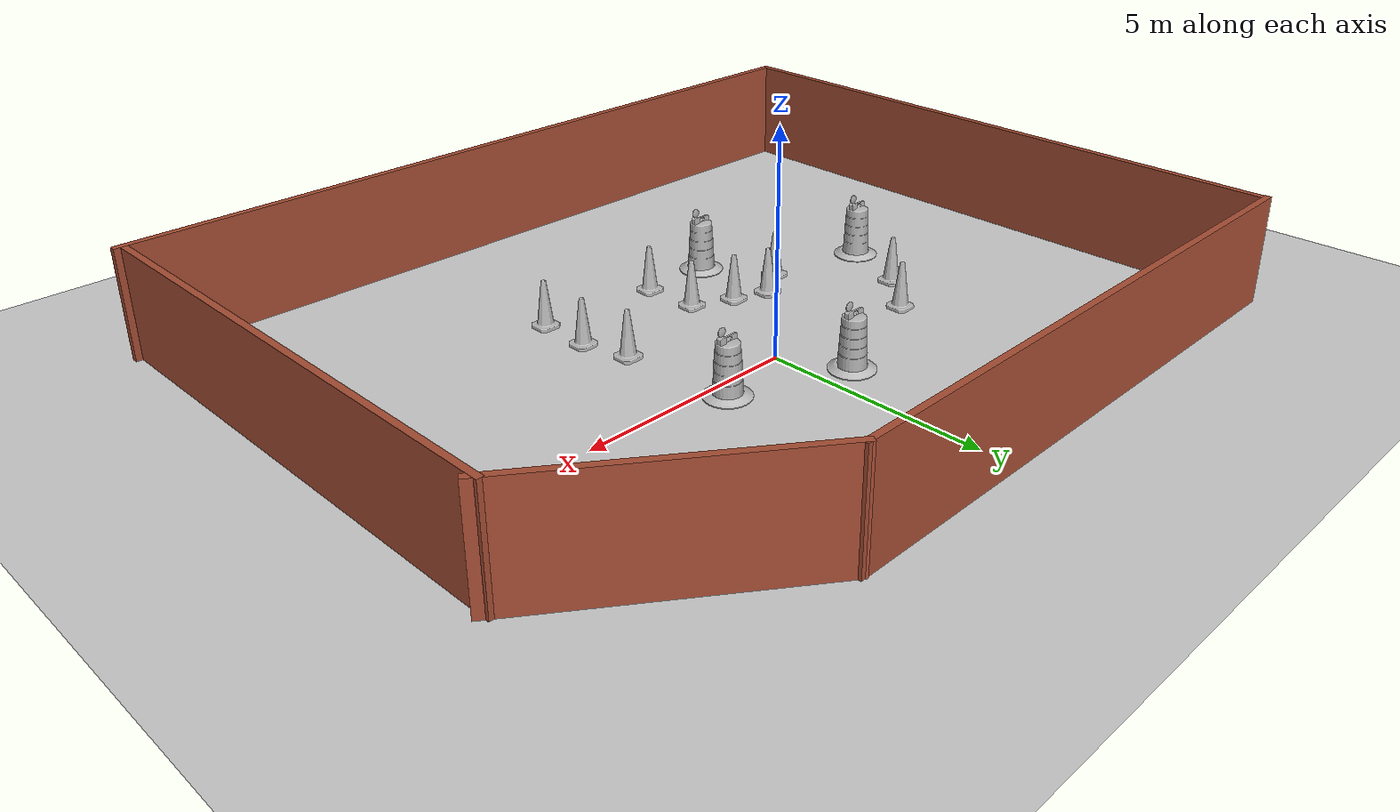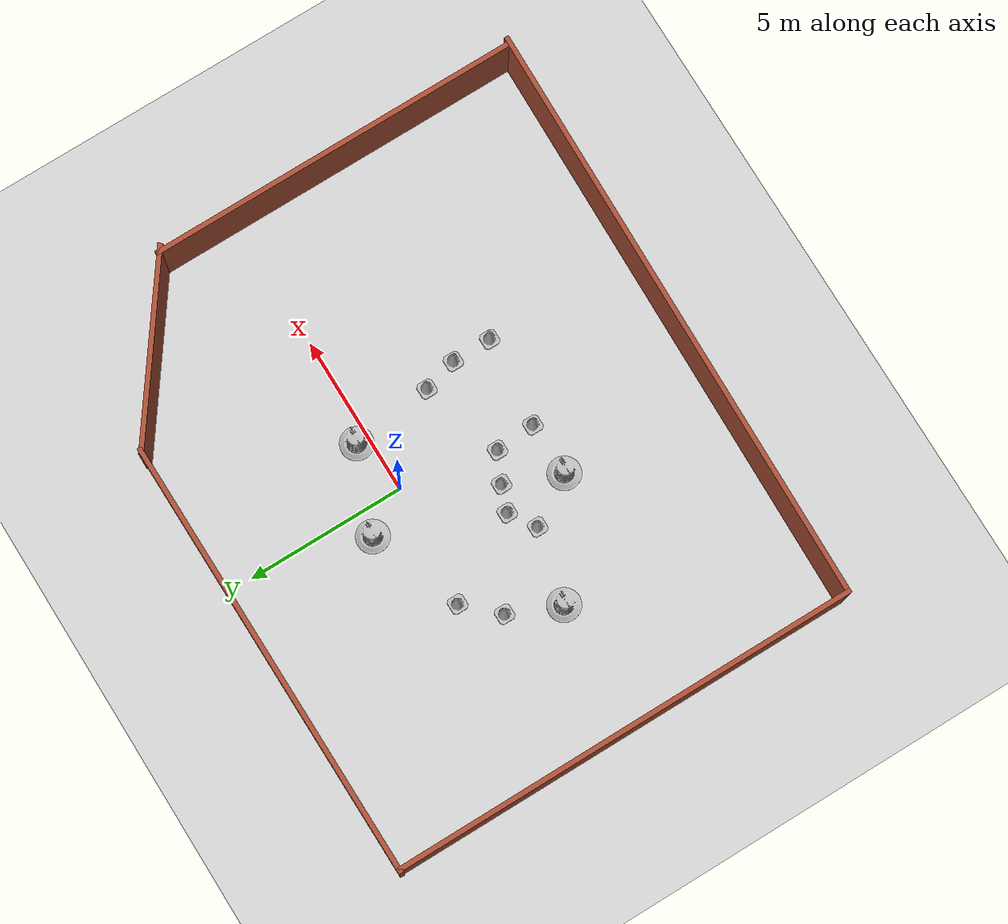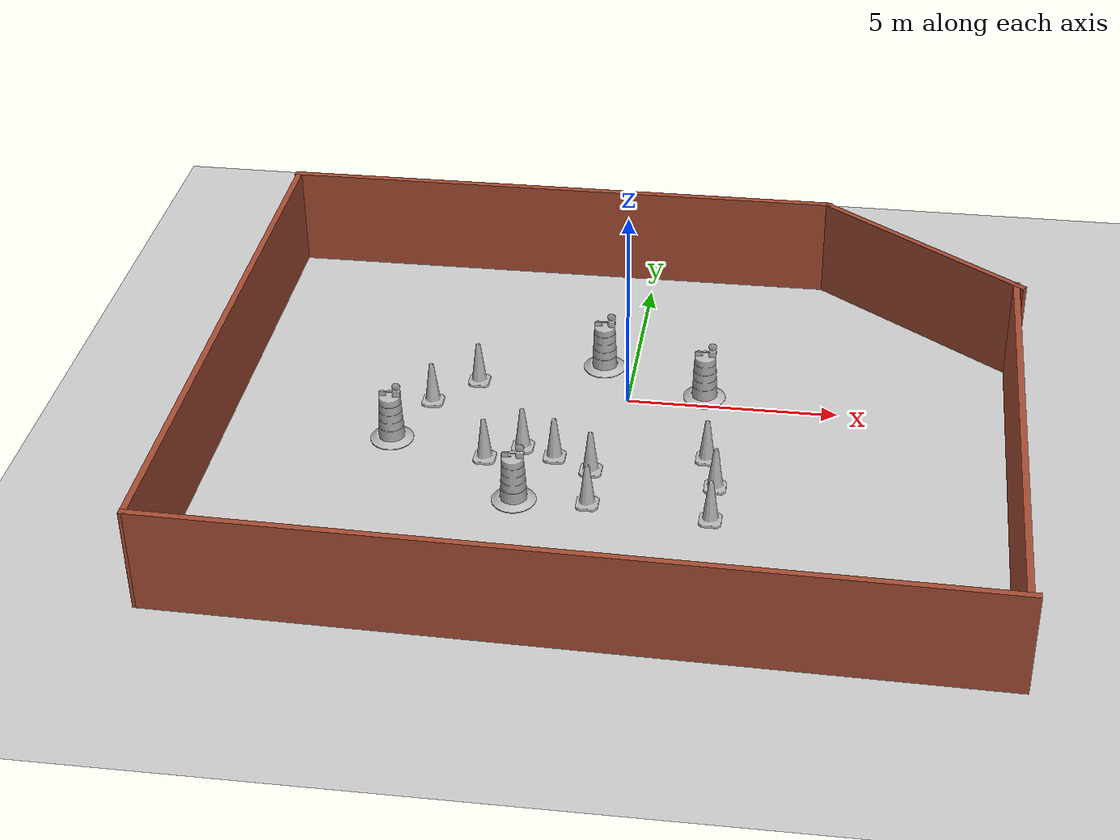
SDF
<sdf version="1.7">
 <world name="default">
  <light name="sun" type="directional">
   <pose>0 0 10 0 -0 0</pose>
   <diffuse>0.8 0.8 0.8 1</diffuse>
   <specular>0.2 0.2 0.2 1</specular>
   <attenuation>
    <range>1000</range>
    <constant>0.9</constant>
    <linear>0.01</linear>
    <quadratic>0.001</quadratic>
   </attenuation>
   <direction>-0.5 0.1 -0.9</direction>
   <spot><inner_angle>0</inner_angle><outer_angle>0</outer_angle><falloff>0</falloff></spot>
  </light>
  <model name="ground_plane">
   <static>1</static>
   <link name="link">
    <collision name="collision">
     <geometry><plane><normal>0 0 1</normal><size>100 100</size></plane></geometry>
     <surface>
      <contact><collide_bitmask>65535</collide_bitmask></contact>
      <friction><ode><mu>100</mu><mu2>50</mu2></ode></friction>
     </surface>
    </collision>
    <visual name="visual">
     <cast_shadows>0</cast_shadows>
     <geometry><plane><normal>0 0 1</normal><size>100 100</size></plane></geometry>
     <material>
      <script><uri>file://media/materials/scripts/gazebo.material</uri><name>Gazebo/Grey</name></script>
     </material>
    </visual>
   </link>
  </model>
  <gravity>0 0 -9.8</gravity>
  <magnetic_field>6e-06 2.3e-05 -4.2e-05</magnetic_field>
  <atmosphere type="adiabatic"/>
  <physics type="ode">
   <max_step_size>0.001</max_step_size>
   <real_time_factor>1</real_time_factor>
   <real_time_update_rate>1000</real_time_update_rate>
  </physics>
  <scene><ambient>0.4 0.4 0.4 1</ambient><background>0.7 0.7 0.7 1</background><shadows>1</shadows></scene>
  <spherical_coordinates>
   <surface_model>EARTH_WGS84</surface_model>
   <latitude_deg>0</latitude_deg>
   <longitude_deg>0</longitude_deg>
   <elevation>0</elevation>
   <heading_deg>0</heading_deg>
  </spherical_coordinates>
  <model name="Construction Barrel">
   <link name="link">
    <inertial>
     <pose>0 0 0.4 0 -0 0</pose>
     <mass>500</mass>
     <inertia><ixx>51.2096</ixx><iyy>51.2096</iyy><izz>25</izz><ixy>0</ixy><ixz>0</ixz><iyz>0</iyz></inertia>
    </inertial>
    <collision name="collision">
     <geometry><mesh><uri>model://construction_barrel/meshes/construction_barrel.dae</uri></mesh></geometry>
    </collision>
    <visual name="visual">
     <geometry><mesh><uri>model://construction_barrel/meshes/construction_barrel.dae</uri></mesh></geometry>
    </visual>
   </link>
   <pose>-0.756323 1.39223 -1e-06 0 5e-06 -2.6e-05</pose>
  </model>
  <model name="Construction Barrel_0">
   <link name="link">
    <inertial>
     <pose>0 0 0.4 0 -0 0</pose>
     <mass>500</mass>
     <inertia><ixx>51.2096</ixx><iyy>51.2096</iyy><izz>25</izz><ixy>0</ixy><ixz>0</ixz><iyz>0</iyz></inertia>
    </inertial>
    <collision name="collision">
     <geometry><mesh><uri>model://construction_barrel/meshes/construction_barrel.dae</uri></mesh></geometry>
    </collision>
    <visual name="visual">
     <geometry><mesh><uri>model://construction_barrel/meshes/construction_barrel.dae</uri></mesh></geometry>
    </visual>
   </link>
   <pose>1.80013 0.377144 0 0 0 -2.6e-05</pose>
  </model>
  <model name="Construction Cone">
   <link name="link">
    <collision name="collision">
     <geometry>
      <mesh><scale>10 10 10</scale><uri>model://construction_cone/meshes/construction_cone.dae</uri></mesh>
     </geometry>
    </collision>
    <visual name="visual">
     <geometry>
      <mesh><scale>10 10 10</scale><uri>model://construction_cone/meshes/construction_cone.dae</uri></mesh>
     </geometry>
    </visual>
    <inertial>
     <inertia><ixx>1</ixx><ixy>0</ixy><ixz>0</ixz><iyy>1</iyy><iyz>0</iyz><izz>1</izz></inertia>
     <mass>1</mass>
    </inertial>
   </link>
   <pose>-2.19745 -2.25046 -0 0 -0 0</pose>
  </model>
  <model name="Construction Cone_0">
   <link name="link">
    <collision name="collision">
     <geometry>
      <mesh><scale>10 10 10</scale><uri>model://construction_cone/meshes/construction_cone.dae</uri></mesh>
     </geometry>
    </collision>
    <visual name="visual">
     <geometry>
      <mesh><scale>10 10 10</scale><uri>model://construction_cone/meshes/construction_cone.dae</uri></mesh>
     </geometry>
    </visual>
    <inertial>
     <inertia><ixx>1</ixx><ixy>0</ixy><ixz>0</ixz><iyy>1</iyy><iyz>0</iyz><izz>1</izz></inertia>
     <mass>1</mass>
    </inertial>
   </link>
   <pose>-1.40494 -2.55135 -0 0 -0 0</pose>
  </model>
  <model name="Construction Cone_1">
   <link name="link">
    <collision name="collision">
     <geometry>
      <mesh><scale>10 10 10</scale><uri>model://construction_cone/meshes/construction_cone.dae</uri></mesh>
     </geometry>
    </collision>
    <visual name="visual">
     <geometry>
      <mesh><scale>10 10 10</scale><uri>model://construction_cone/meshes/construction_cone.dae</uri></mesh>
     </geometry>
    </visual>
    <inertial>
     <inertia><ixx>1</ixx><ixy>0</ixy><ixz>0</ixz><iyy>1</iyy><iyz>0</iyz><izz>1</izz></inertia>
     <mass>1</mass>
    </inertial>
   </link>
   <pose>-0.501986 -2.9745 -0 0 -0 0</pose>
  </model>
  <model name="Construction Cone_2">
   <link name="link">
    <collision name="collision">
     <geometry>
      <mesh><scale>10 10 10</scale><uri>model://construction_cone/meshes/construction_cone.dae</uri></mesh>
     </geometry>
    </collision>
    <visual name="visual">
     <geometry>
      <mesh><scale>10 10 10</scale><uri>model://construction_cone/meshes/construction_cone.dae</uri></mesh>
     </geometry>
    </visual>
    <inertial>
     <inertia><ixx>1</ixx><ixy>0</ixy><ixz>0</ixz><iyy>1</iyy><iyz>0</iyz><izz>1</izz></inertia>
     <mass>1</mass>
    </inertial>
   </link>
   <pose>2.09724 -2.18232 -0 0 -0 0</pose>
  </model>
  <model name="Construction Cone_3">
   <link name="link">
    <collision name="collision">
     <geometry>
      <mesh><scale>10 10 10</scale><uri>model://construction_cone/meshes/construction_cone.dae</uri></mesh>
     </geometry>
    </collision>
    <visual name="visual">
     <geometry>
      <mesh><scale>10 10 10</scale><uri>model://construction_cone/meshes/construction_cone.dae</uri></mesh>
     </geometry>
    </visual>
    <inertial>
     <inertia><ixx>1</ixx><ixy>0</ixy><ixz>0</ixz><iyy>1</iyy><iyz>0</iyz><izz>1</izz></inertia>
     <mass>1</mass>
    </inertial>
   </link>
   <pose>-3.69879 0.345038 -0 0 -0 0</pose>
  </model>
  <model name="Construction Cone_4">
   <link name="link">
    <collision name="collision">
     <geometry>
      <mesh><scale>10 10 10</scale><uri>model://construction_cone/meshes/construction_cone.dae</uri></mesh>
     </geometry>
    </collision>
    <visual name="visual">
     <geometry>
      <mesh><scale>10 10 10</scale><uri>model://construction_cone/meshes/construction_cone.dae</uri></mesh>
     </geometry>
    </visual>
    <inertial>
     <inertia><ixx>1</ixx><ixy>0</ixy><ixz>0</ixz><iyy>1</iyy><iyz>0</iyz><izz>1</izz></inertia>
     <mass>1</mass>
    </inertial>
   </link>
   <pose>-0.406438 -4.23374 -1e-05 -1e-06 0 0</pose>
  </model>
  <model name="Construction Cone_5">
   <link name="link">
    <collision name="collision">
     <geometry>
      <mesh><scale>10 10 10</scale><uri>model://construction_cone/meshes/construction_cone.dae</uri></mesh>
     </geometry>
    </collision>
    <visual name="visual">
     <geometry>
      <mesh><scale>10 10 10</scale><uri>model://construction_cone/meshes/construction_cone.dae</uri></mesh>
     </geometry>
    </visual>
    <inertial>
     <inertia><ixx>1</ixx><ixy>0</ixy><ixz>0</ixz><iyy>1</iyy><iyz>0</iyz><izz>1</izz></inertia>
     <mass>1</mass>
    </inertial>
   </link>
   <pose>2.38815 -3.2576 -0 0 -0 0</pose>
  </model>
  <model name="Construction Cone_6">
   <link name="link">
    <collision name="collision">
     <geometry>
      <mesh><scale>10 10 10</scale><uri>model://construction_cone/meshes/construction_cone.dae</uri></mesh>
     </geometry>
    </collision>
    <visual name="visual">
     <geometry>
      <mesh><scale>10 10 10</scale><uri>model://construction_cone/meshes/construction_cone.dae</uri></mesh>
     </geometry>
    </visual>
    <inertial>
     <inertia><ixx>1</ixx><ixy>0</ixy><ixz>0</ixz><iyy>1</iyy><iyz>0</iyz><izz>1</izz></inertia>
     <mass>1</mass>
    </inertial>
   </link>
   <pose>2.39316 -4.49605 -9e-06 -2e-06 0 0</pose>
  </model>
  <model name="Construction Cone_7">
   <link name="link">
    <collision name="collision">
     <geometry>
      <mesh><scale>10 10 10</scale><uri>model://construction_cone/meshes/construction_cone.dae</uri></mesh>
     </geometry>
    </collision>
    <visual name="visual">
     <geometry>
      <mesh><scale>10 10 10</scale><uri>model://construction_cone/meshes/construction_cone.dae</uri></mesh>
     </geometry>
    </visual>
    <inertial>
     <inertia><ixx>1</ixx><ixy>0</ixy><ixz>0</ixz><iyy>1</iyy><iyz>0</iyz><izz>1</izz></inertia>
     <mass>1</mass>
    </inertial>
   </link>
   <pose>-3.00495 -2.78053 -1e-05 -1e-06 0 0</pose>
  </model>
  <model name="Construction Cone_8">
   <link name="link">
    <collision name="collision">
     <geometry>
      <mesh><scale>10 10 10</scale><uri>model://construction_cone/meshes/construction_cone.dae</uri></mesh>
     </geometry>
    </collision>
    <visual name="visual">
     <geometry>
      <mesh><scale>10 10 10</scale><uri>model://construction_cone/meshes/construction_cone.dae</uri></mesh>
     </geometry>
    </visual>
    <inertial>
     <inertia><ixx>1</ixx><ixy>0</ixy><ixz>0</ixz><iyy>1</iyy><iyz>0</iyz><izz>1</izz></inertia>
     <mass>1</mass>
    </inertial>
   </link>
   <pose>-4.64786 -0.646522 -6e-06 -4e-06 0 0</pose>
  </model>
  <model name="Construction Barrel_1">
   <link name="link">
    <inertial>
     <pose>0 0 0.4 0 -0 0</pose>
     <mass>500</mass>
     <inertia><ixx>51.2096</ixx><iyy>51.2096</iyy><izz>25</izz><ixy>0</ixy><ixz>0</ixz><iyz>0</iyz></inertia>
    </inertial>
    <collision name="collision">
     <geometry><mesh><uri>model://construction_barrel/meshes/construction_barrel.dae</uri></mesh></geometry>
    </collision>
    <visual name="visual">
     <geometry><mesh><uri>model://construction_barrel/meshes/construction_barrel.dae</uri></mesh></geometry>
    </visual>
   </link>
   <pose>-5.31083 -2.2371 -2e-06 1e-06 8e-06 -1e-05</pose>
  </model>
  <model name="Construction Barrel_2">
   <link name="link">
    <inertial>
     <pose>0 0 0.4 0 -0 0</pose>
     <mass>500</mass>
     <inertia><ixx>51.2096</ixx><iyy>51.2096</iyy><izz>25</izz><ixy>0</ixy><ixz>0</ixz><iyz>0</iyz></inertia>
    </inertial>
    <collision name="collision">
     <geometry><mesh><uri>model://construction_barrel/meshes/construction_barrel.dae</uri></mesh></geometry>
    </collision>
    <visual name="visual">
     <geometry><mesh><uri>model://construction_barrel/meshes/construction_barrel.dae</uri></mesh></geometry>
    </visual>
   </link>
   <pose>-2.07693 -4.26199 -1e-06 3e-06 -2e-06 -7e-06</pose>
  </model>
  <audio><device>default</device></audio>
  <model name="walls">
   <pose>-0.087224 -1.71833 0 0 -0 0</pose>
   <link name="Wall_3">
    <collision name="Wall_3_Collision">
     <geometry><box><size>14.75 0.15 2.5</size></box></geometry>
     <pose>0 0 1.25 0 -0 0</pose>
    </collision>
    <visual name="Wall_3_Visual">
     <pose>0 0 1.25 0 -0 0</pose>
     <geometry><box><size>14.75 0.15 2.5</size></box></geometry>
     <material>
      <script><uri>file://media/materials/scripts/gazebo.material</uri><name>Gazebo/Bricks</name></script>
      <ambient>1 1 1 1</ambient>
     </material>
     <meta><layer>0</layer></meta>
    </visual>
    <pose>-9.26475 0.0743 0 0 -0 -1.5708</pose>
   </link>
   <link name="Wall_4">
    <collision name="Wall_4_Collision">
     <geometry><box><size>18.6884 0.15 2.5</size></box></geometry>
     <pose>0 0 1.25 0 -0 0</pose>
    </collision>
    <visual name="Wall_4_Visual">
     <pose>0 0 1.25 0 -0 0</pose>
     <geometry><box><size>18.6884 0.15 2.5</size></box></geometry>
     <material>
      <script><uri>file://media/materials/scripts/gazebo.material</uri><name>Gazebo/Bricks</name></script>
      <ambient>1 1 1 1</ambient>
     </material>
     <meta><layer>0</layer></meta>
    </visual>
    <pose>0.003033 -7.38853 0 0 -0 -0.017568</pose>
   </link>
   <link name="Wall_5">
    <collision name="Wall_5_Collision">
     <geometry><box><size>11.75 0.15 2.5</size></box></geometry>
     <pose>0 0 1.25 0 -0 0</pose>
    </collision>
    <visual name="Wall_5_Visual">
     <pose>0 0 1.25 0 -0 0</pose>
     <geometry><box><size>11.75 0.15 2.5</size></box></geometry>
     <material>
      <script><uri>file://media/materials/scripts/gazebo.material</uri><name>Gazebo/Bricks</name></script>
      <ambient>1 1 1 1</ambient>
     </material>
     <meta><layer>0</layer></meta>
    </visual>
    <pose>9.13124 -1.6118 0 0 -0 1.5708</pose>
   </link>
   <link name="Wall_6">
    <collision name="Wall_6_Collision">
     <geometry><box><size>6.08671 0.15 2.5</size></box></geometry>
     <pose>0 0 1.25 0 -0 0</pose>
    </collision>
    <visual name="Wall_6_Visual">
     <pose>0 0 1.25 0 -0 0</pose>
     <geometry><box><size>6.08671 0.15 2.5</size></box></geometry>
     <material>
      <script><uri>file://media/materials/scripts/gazebo.material</uri><name>Gazebo/Bricks</name></script>
      <ambient>1 1 1 1</ambient>
     </material>
     <meta><layer>0</layer></meta>
    </visual>
    <pose>6.86388 5.7858 0 0 -0 2.51643</pose>
   </link>
   <link name="Wall_7">
    <collision name="Wall_7_Collision">
     <geometry><box><size>13.9538 0.15 2.5</size></box></geometry>
     <pose>0 0 1.25 0 -0 0</pose>
    </collision>
    <visual name="Wall_7_Visual">
     <pose>0 0 1.25 0 -0 0</pose>
     <geometry><box><size>13.9538 0.15 2.5</size></box></geometry>
     <material>
      <script><uri>file://media/materials/scripts/gazebo.material</uri><name>Gazebo/Bricks</name></script>
      <ambient>1 1 1 1</ambient>
     </material>
     <meta><layer>0</layer></meta>
    </visual>
    <pose>-2.39828 7.47644 0 0 -0 -3.13485</pose>
   </link>
   <static>1</static>
  </model>
 </world>
</sdf>
